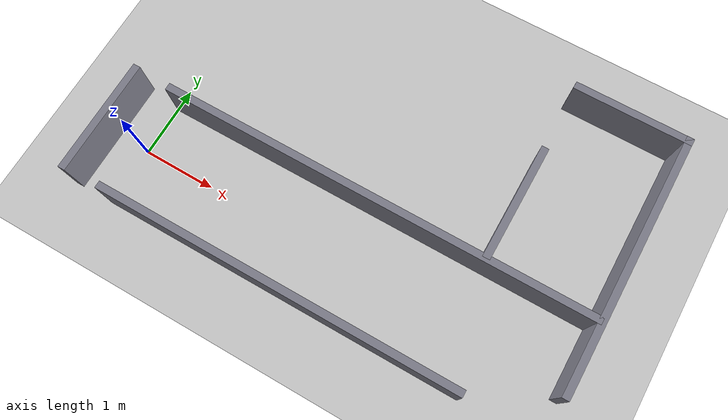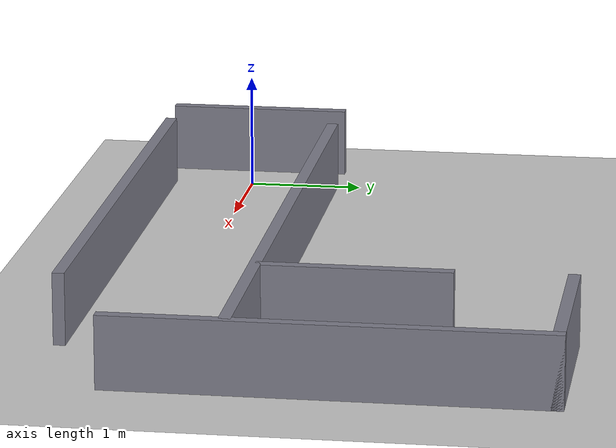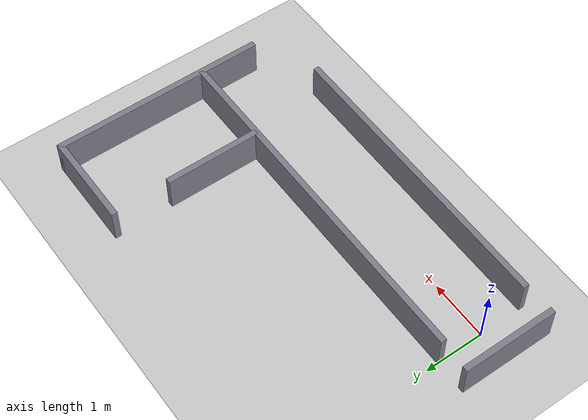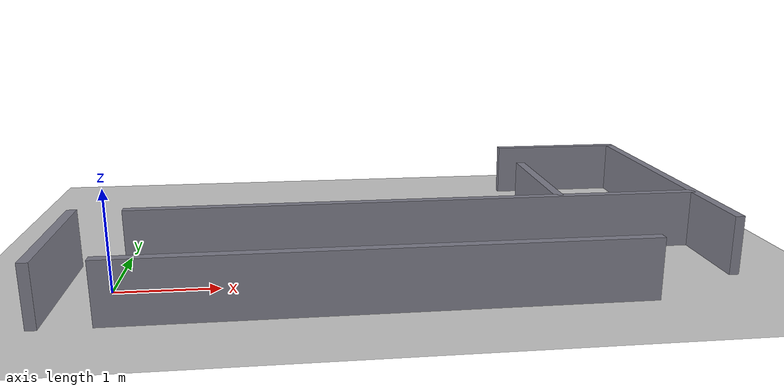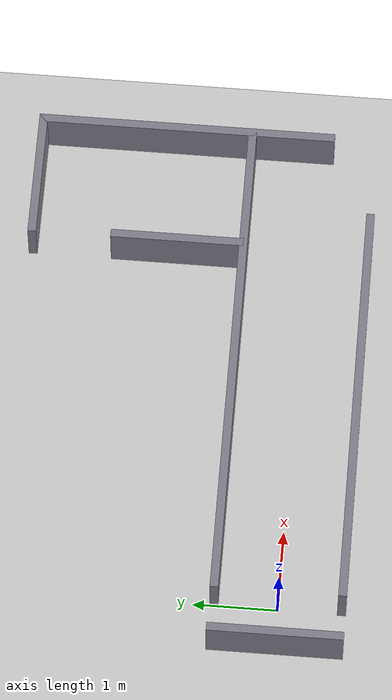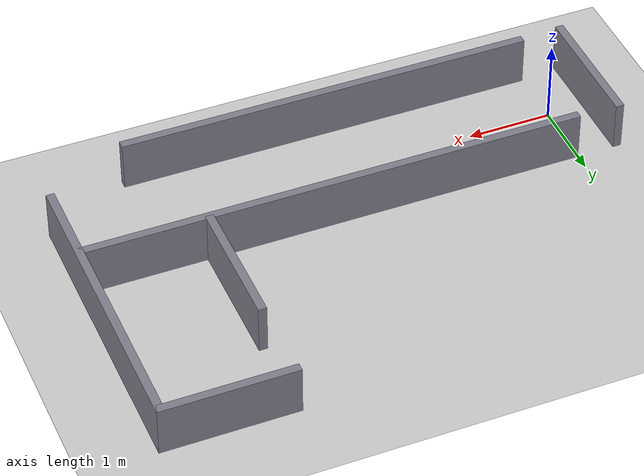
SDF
<?xml version="1.0"?>
<sdf version="1.6">
  <world name="track">

    <include><uri>model://sun</uri></include>
    <include><uri>model://ground_plane</uri></include>

    <!-- Reusable wall macro is not available in raw SDF, so walls are explicit.
         Each wall: a 0.1 m thick, 0.6 m tall box. -->

    <model name="walls">
      <static>true</static>

      <!-- ── Entry corridor along +X (from ~0 to ~6 m), 1.5 m wide ──────────── -->
      <!-- left wall (y = +0.75) -->
      <link name="w_left">
        <pose>3.0 0.75 0.3 0 0 0</pose>
        <collision name="c"><geometry><box><size>6.0 0.1 0.6</size></box></geometry></collision>
        <visual name="v"><geometry><box><size>6.0 0.1 0.6</size></box></geometry>
          <material><ambient>0.5 0.5 0.55 1</ambient><diffuse>0.5 0.5 0.55 1</diffuse></material></visual>
      </link>
      <!-- right wall (y = -0.75), stops early to leave the corner open -->
      <link name="w_right">
        <pose>2.5 -0.75 0.3 0 0 0</pose>
        <collision name="c"><geometry><box><size>5.0 0.1 0.6</size></box></geometry></collision>
        <visual name="v"><geometry><box><size>5.0 0.1 0.6</size></box></geometry>
          <material><ambient>0.5 0.5 0.55 1</ambient><diffuse>0.5 0.5 0.55 1</diffuse></material></visual>
      </link>
      <!-- back wall closing the start (x = -0.5) -->
      <link name="w_start">
        <pose>-0.5 0.0 0.3 0 0 0</pose>
        <collision name="c"><geometry><box><size>0.1 1.6 0.6</size></box></geometry></collision>
        <visual name="v"><geometry><box><size>0.1 1.6 0.6</size></box></geometry>
          <material><ambient>0.5 0.5 0.55 1</ambient><diffuse>0.5 0.5 0.55 1</diffuse></material></visual>
      </link>

      <!-- ── Turn + branch along +Y (the corridor bends left at x~5.5) ──────── -->
      <!-- far wall of the entry corridor (x = 6.0) -->
      <link name="w_far">
        <pose>6.0 1.55 0.3 0 0 0</pose>
        <collision name="c"><geometry><box><size>0.1 3.6 0.6</size></box></geometry></collision>
        <visual name="v"><geometry><box><size>0.1 3.6 0.6</size></box></geometry>
          <material><ambient>0.5 0.5 0.55 1</ambient><diffuse>0.5 0.5 0.55 1</diffuse></material></visual>
      </link>
      <!-- inner corner wall -->
      <link name="w_inner">
        <pose>4.5 1.55 0.3 0 0 0</pose>
        <collision name="c"><geometry><box><size>0.1 1.6 0.6</size></box></geometry></collision>
        <visual name="v"><geometry><box><size>0.1 1.6 0.6</size></box></geometry>
          <material><ambient>0.5 0.5 0.55 1</ambient><diffuse>0.5 0.5 0.55 1</diffuse></material></visual>
      </link>
      <!-- end cap of the branch (y = 3.3) -->
      <link name="w_end">
        <pose>5.25 3.3 0.3 0 0 0</pose>
        <collision name="c"><geometry><box><size>1.6 0.1 0.6</size></box></geometry></collision>
        <visual name="v"><geometry><box><size>1.6 0.1 0.6</size></box></geometry>
          <material><ambient>0.5 0.5 0.55 1</ambient><diffuse>0.5 0.5 0.55 1</diffuse></material></visual>
      </link>
    </model>

  </world>
</sdf>
